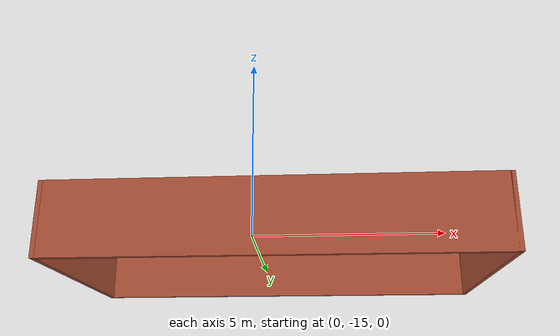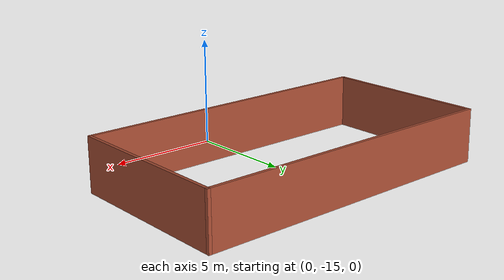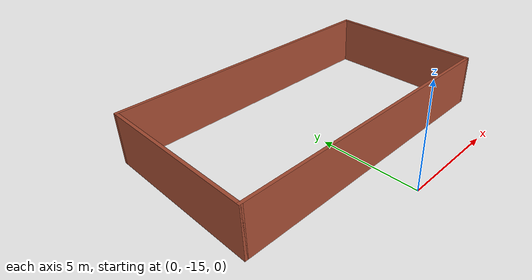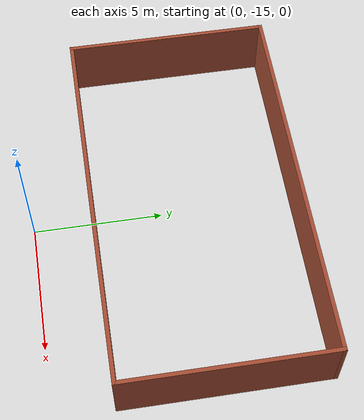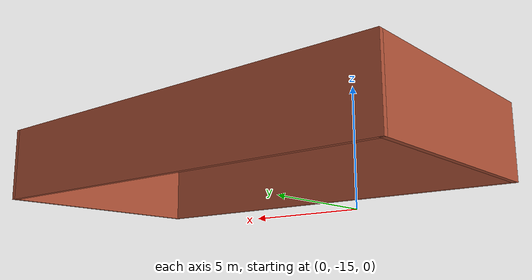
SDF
<?xml version='1.0'?>
<sdf version='1.7'>
  <model name='room'>
    <pose>0.34 -6.3675 0 0 -0 0</pose>
    <link name='Wall_15'>
      <collision name='Wall_15_Collision'>
        <geometry>
          <box>
            <size>14.75 0.15 2.5</size>
          </box>
        </geometry>
        <pose>0 0 1.25 0 -0 0</pose>
      </collision>
      <visual name='Wall_15_Visual'>
        <pose>0 0 1.25 0 -0 0</pose>
        <geometry>
          <box>
            <size>14.75 0.15 2.5</size>
          </box>
        </geometry>
        <material>
          <script>
            <uri>file://media/materials/scripts/gazebo.material</uri>
            <name>Gazebo/Bricks</name>
          </script>
          <ambient>1 1 1 1</ambient>
        </material>
        <meta>
          <layer>0</layer>
        </meta>
      </visual>
      <pose>0 -6.2925 0 0 -0 0</pose>
    </link>
    <link name='Wall_16'>
      <collision name='Wall_16_Collision'>
        <geometry>
          <box>
            <size>8 0.15 2.5</size>
          </box>
        </geometry>
        <pose>0 0 1.25 0 -0 0</pose>
      </collision>
      <visual name='Wall_16_Visual'>
        <pose>0 0 1.25 0 -0 0</pose>
        <geometry>
          <box>
            <size>8 0.15 2.5</size>
          </box>
        </geometry>
        <material>
          <script>
            <uri>file://media/materials/scripts/gazebo.material</uri>
            <name>Gazebo/Bricks</name>
          </script>
          <ambient>1 1 1 1</ambient>
        </material>
        <meta>
          <layer>0</layer>
        </meta>
      </visual>
      <pose>7.3 -2.3675 0 0 -0 1.5708</pose>
    </link>
    <link name='Wall_17'>
      <collision name='Wall_17_Collision'>
        <geometry>
          <box>
            <size>14.75 0.15 2.5</size>
          </box>
        </geometry>
        <pose>0 0 1.25 0 -0 0</pose>
      </collision>
      <visual name='Wall_17_Visual'>
        <pose>0 0 1.25 0 -0 0</pose>
        <geometry>
          <box>
            <size>14.75 0.15 2.5</size>
          </box>
        </geometry>
        <material>
          <script>
            <uri>file://media/materials/scripts/gazebo.material</uri>
            <name>Gazebo/Bricks</name>
          </script>
          <ambient>1 1 1 1</ambient>
        </material>
        <meta>
          <layer>0</layer>
        </meta>
      </visual>
      <pose>0 1.5575 0 0 -0 3.14159</pose>
    </link>
    <link name='Wall_18'>
      <collision name='Wall_18_Collision'>
        <geometry>
          <box>
            <size>8 0.15 2.5</size>
          </box>
        </geometry>
        <pose>0 0 1.25 0 -0 0</pose>
      </collision>
      <visual name='Wall_18_Visual'>
        <pose>0 0 1.25 0 -0 0</pose>
        <geometry>
          <box>
            <size>8 0.15 2.5</size>
          </box>
        </geometry>
        <material>
          <script>
            <uri>file://media/materials/scripts/gazebo.material</uri>
            <name>Gazebo/Bricks</name>
          </script>
          <ambient>1 1 1 1</ambient>
        </material>
        <meta>
          <layer>0</layer>
        </meta>
      </visual>
      <pose>-7.3 -2.3675 0 0 -0 -1.5708</pose>
    </link>
    <static>0</static>
  </model>
</sdf>
